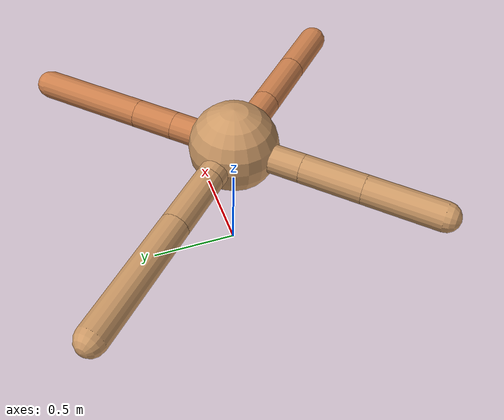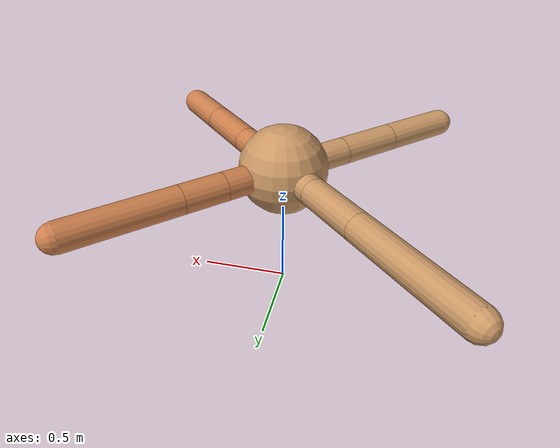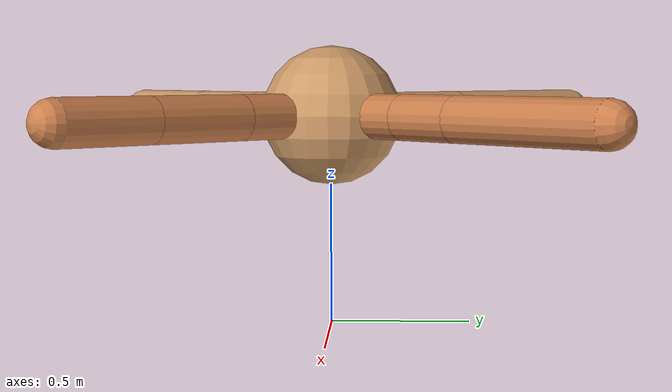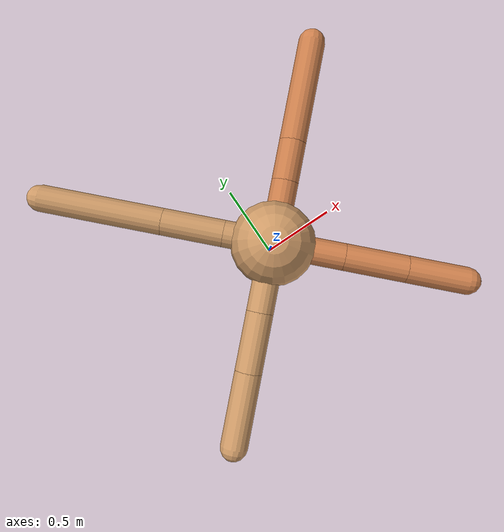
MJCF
<mujoco model="ant">
  <compiler angle="degree" coordinate="local" inertiafromgeom="true" />
  <option integrator="RK4" timestep="0.01" />
  <custom>
    <numeric data="0.0 0.0 0.55 1.0 0.0 0.0 0.0 0.0 1.0 0.0 -1.0 0.0 -1.0 0.0 1.0" name="init_qpos" />
  </custom>
  <default>
    <joint armature="1" damping="1" limited="true" />
    <geom conaffinity="0" condim="3" density="5.0" friction="1.5 0.1 0.1" margin="0.01" rgba="0.8 0.6 0.4 1" />
  </default>
  <worldbody>
    <body name="torso" pos="0 0 0.75">
      <geom name="torso_geom" pos="0 0 0" size="0.25" type="sphere" />

      <body name="front_left_leg" pos="0 0 0">
        <geom fromto="0.0 0.0 0.0 0.25894770599486233 0.25894770599486233 0.0" name="aux_1_geom" size="0.08" type="capsule" rgba=".8 .5 .3 1" />
        <body name="aux_1" pos="0.25894770599486233 0.25894770599486233 0.0">
          <joint axis="0 0 1" name="hip_1" pos="0.0 0.0 0.0" range="-40 40" type="hinge" />
          <geom fromto="0.0 0.0 0.0 0.1707841699855125 0.1707841699855125 0.0" name="left_leg_geom" size="0.08" type="capsule" rgba=".8 .5 .3 1" />
          <body pos="0.1707841699855125 0.1707841699855125 0.0" name="front_left_foot">
            <joint axis="-1 1 0" name="ankle_1" pos="0.0 0.0 0.0" range="30 100" type="hinge" />
            <geom fromto="0.0 0.0 0.0 0.4331523124795216 0.4331523124795216 0.0" name="left_ankle_geom" size="0.08" type="capsule" rgba=".8 .5 .3 1" />
          </body>
        </body>
      </body>
      <body name="front_right_leg" pos="0 0 0">
        <geom fromto="0.0 0.0 0.0 -0.20655116295636713 0.20655116295636713 0.0" name="aux_2_geom" size="0.08" type="capsule" />
        <body name="aux_2" pos="-0.20655116295636713 0.20655116295636713 0.0">
          <joint axis="0 0 1" name="hip_2" pos="0.0 0.0 0.0" range="-40 40" type="hinge" />
          <geom fromto="0.0 0.0 0.0 -0.25607551666830647 0.25607551666830647 0.0" name="right_leg_geom" size="0.08" type="capsule" />
          <body pos="-0.25607551666830647 0.25607551666830647 0.0" name="front_right_foot">
            <joint axis="1 1 0" name="ankle_2" pos="0.0 0.0 0.0" range="-100 -30" type="hinge" />
            <geom fromto="0.0 0.0 0.0 -0.5105535795204871 0.5105535795204871 0.0" name="right_ankle_geom" size="0.08" type="capsule" />
          </body>
        </body>
      </body>
      <body name="left_back_leg" pos="0 0 0">
        <geom fromto="0.0 0.0 0.0 -0.2861546743496275 -0.2861546743496275 0.0" name="aux_3_geom" size="0.08" type="capsule" />
        <body name="aux_3" pos="-0.2861546743496275 -0.2861546743496275 0.0">
          <joint axis="0 0 1" name="hip_3" pos="0.0 0.0 0.0" range="-40 40" type="hinge" />
          <geom fromto="0.0 0.0 0.0 -0.2432847573514455 -0.2432847573514455 0.0" name="back_leg_geom" size="0.08" type="capsule" />
          <body pos="-0.2432847573514455 -0.2432847573514455 0.0" name="left_back_foot">
            <joint axis="-1 1 0" name="ankle_3" pos="0.0 0.0 0.0" range="-100 -30" type="hinge" />
            <geom fromto="0.0 0.0 0.0 -0.29982316366133865 -0.29982316366133865 0.0" name="third_ankle_geom" size="0.08" type="capsule" />
          </body>
        </body>
      </body>
      <body name="right_back_leg" pos="0 0 0">
        <geom fromto="0.0 0.0 0.0 0.2938221304865701 -0.2938221304865701 0.0" name="aux_4_geom" size="0.08" type="capsule" rgba=".8 .5 .3 1" />
        <body name="aux_4" pos="0.2938221304865701 -0.2938221304865701 0.0">
          <joint axis="0 0 1" name="hip_4" pos="0.0 0.0 0.0" range="-40 40" type="hinge" />
          <geom fromto="0.0 0.0 0.0 0.2583969858752359 -0.2583969858752359 0.0" name="rightback_leg_geom" size="0.08" type="capsule" rgba=".8 .5 .3 1" />
          <body pos="0.2583969858752359 -0.2583969858752359 0.0" name="right_back_foot">
            <joint axis="1 1 0" name="ankle_4" pos="0.0 0.0 0.0" range="30 100" type="hinge" />
            <geom fromto="0.0 0.0 0.0 0.25009150637496663 -0.25009150637496663 0.0" name="fourth_ankle_geom" size="0.08" type="capsule" rgba=".8 .5 .3 1" />
          </body>
        </body>
      </body>
    </body>
  </worldbody>
  <actuator>
    <motor ctrllimited="true" ctrlrange="-1.0 1.0" joint="hip_4" gear="150" />
    <motor ctrllimited="true" ctrlrange="-1.0 1.0" joint="ankle_4" gear="150" />
    <motor ctrllimited="true" ctrlrange="-1.0 1.0" joint="hip_1" gear="150" />
    <motor ctrllimited="true" ctrlrange="-1.0 1.0" joint="ankle_1" gear="150" />
    <motor ctrllimited="true" ctrlrange="-1.0 1.0" joint="hip_2" gear="150" />
    <motor ctrllimited="true" ctrlrange="-1.0 1.0" joint="ankle_2" gear="150" />
    <motor ctrllimited="true" ctrlrange="-1.0 1.0" joint="hip_3" gear="150" />
    <motor ctrllimited="true" ctrlrange="-1.0 1.0" joint="ankle_3" gear="150" />
  </actuator>
</mujoco>
